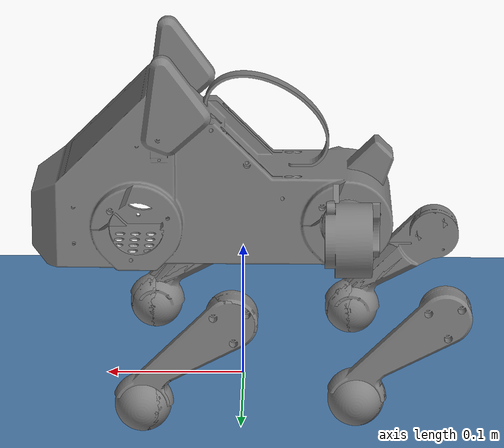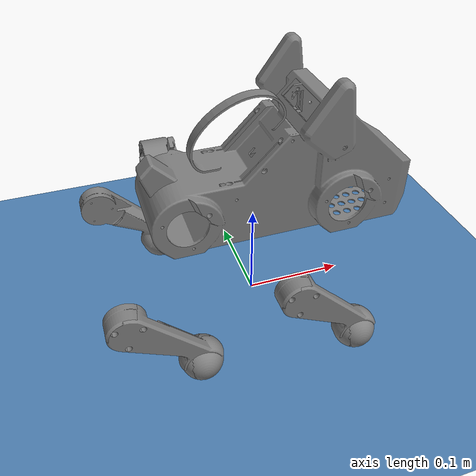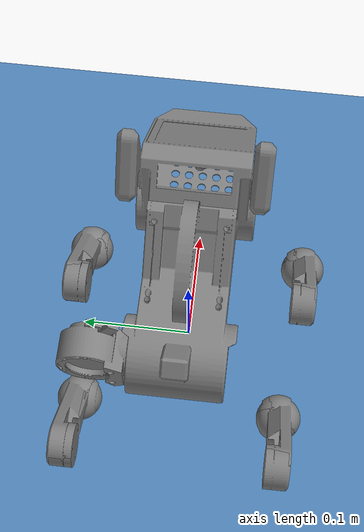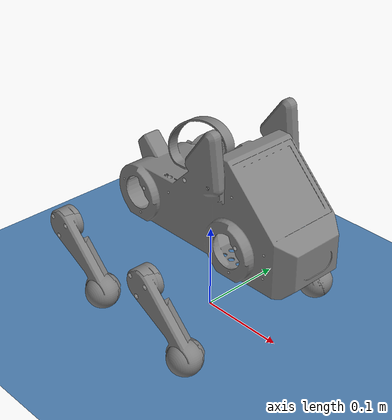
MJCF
<mujoco model="pupper_v3">
    <asset>
        <texture type="skybox" builtin="gradient" rgb1=".3 .5 .7" rgb2="0 0 0" width="512"
            height="512" />
        <texture name="grid" type="2d" builtin="checker" width="512" height="512" rgb1=".2 .4 .6"
            rgb2=".4 .6 .8" />
        <material name="grid" texture="grid" texrepeat="1 1" texuniform="true" reflectance="0" />
    </asset>

    <option iterations="1" ls_iterations="5" cone="elliptic" impratio="100" timestep="0.004">
        <flag eulerdamp="disable" />
    </option>

    <compiler angle="radian" meshdir="../meshes/stl/" autolimits="true" />

    <sensor>
        <gyro name="body_gyro" site="body_imu_site" />
        <accelerometer name="body_acc" site="body_imu_site" />
        <framequat name="body_quat" objtype="site" objname="body_imu_site" />
        <framequat objtype="site" objname="body_imu_site" name="orientation" />
        <framepos objtype="site" objname="body_imu_site" name="global_position" />
        <framelinvel objtype="site" objname="body_imu_site" name="global_linvel" />
        <frameangvel objtype="site" objname="body_imu_site" name="global_angvel" />
    </sensor>

    <custom>
        <numeric data="5" name="max_contact_points" />
        <numeric data="4" name="max_geom_pairs" />
    </custom>

    <default>
        <general forcerange="-3 3" forcelimited="true" biastype="affine" gainprm="5.0 0 0"
            biasprm="0 -5.0 -0.1" />
        <geom condim="3" contype="0" conaffinity="0" />
        <joint armature="0.0016" type="hinge" damping="0.01" limited="true" />
        <default class="collision">
            <geom group="3" contype="0" conaffinity="1" solimp="0.015 1 0.031"
                friction="0.8 0.02 0.01" />
        </default>
    </default>

    <asset>
        <mesh name="BodyV4v70_001" file="BodyV4v70_001.stl" />
        <mesh name="LegAssemblyForFlangedv26_001" file="LegAssemblyForFlangedv26_001.stl" />
        <mesh name="LegAssemblyForFlangedv26_002" file="LegAssemblyForFlangedv26_002.stl" />
        <mesh name="LegAssemblyForFlangedv26_003" file="LegAssemblyForFlangedv26_003.stl" />
        <mesh name="LegAssemblyForFlangedv26_010" file="LegAssemblyForFlangedv26_010.stl"
            scale="1 -1 1" />
        <mesh name="LegAssemblyForFlangedv26_011" file="LegAssemblyForFlangedv26_011.stl"
            scale="1 1 -1" />
        <mesh name="LegAssemblyForFlangedv26_012" file="LegAssemblyForFlangedv26_012.stl"
            scale="1 1 -1" />
        <mesh name="LegAssemblyForFlangedv26_005" file="LegAssemblyForFlangedv26_005.stl" />
        <mesh name="LegAssemblyForFlangedv26_006" file="LegAssemblyForFlangedv26_006.stl" />
        <mesh name="LegAssemblyForFlangedv26_007" file="LegAssemblyForFlangedv26_007.stl" />
        <mesh name="LegAssemblyForFlangedv26_013" file="LegAssemblyForFlangedv26_013.stl"
            scale="1 -1 1" />
        <mesh name="LegAssemblyForFlangedv26_014" file="LegAssemblyForFlangedv26_014.stl"
            scale="1 1 -1" />
        <mesh name="LegAssemblyForFlangedv26_015" file="LegAssemblyForFlangedv26_015.stl"
            scale="1 1 -1" />
    </asset>

    <worldbody>
        <geom name="floor" size="0 0 .05" type="plane" material="grid" condim="3" contype="1"
            conaffinity="1" />
        <geom name="floor_visual" size="0 0 .05" pos="0 0 -0.001" type="plane" material="grid"
            condim="3" contype="0" conaffinity="0" group="1" />
        <light name="spotlight" mode="targetbodycom" target="base_link" diffuse="0.9 0.9 0.9"
            specular="0.3 0.3 0.3" pos="0 -4 4" cutoff="100" />
        <camera name="tracking_cam" mode="targetbody" target="base_link" pos="0.5 -0.5 0.5" />

        <body name="base_link" pos="0 0 0.13" gravcomp="0">
            <site name="body_imu_site" pos="0.09 0 0.032" />
            <inertial pos="0.025 0 0.015" quat="0 0.677807 0 0.73524" mass="1.506"
                diaginertia="0.00854071 0.0085 0.00235929" />
            <joint name="world_to_body" type="free" />
            <geom class="collision" size="0.04507 0.06379 0.129715" pos="0.02146 0 0.03345"
                quat="0.499998 -0.5 -0.500002 0.5" type="box" />
            <geom quat="0.499998 -0.5 -0.500002 0.5" type="mesh" contype="0" conaffinity="0"
                group="1" density="0" mesh="BodyV4v70_001" />

            <body name="leg_front_r_1" pos="0.075 -0.0835 0" quat="0.707105 0.707108 0 0"
                gravcomp="0">
                <inertial pos="0 0 0" mass="0.18" diaginertia="7.4e-05 5.8e-05 4.8e-05" />
                <joint name="leg_front_r_1" pos="0 0 0" axis="0 0 1" range="-1.22 2.51" />
                <geom pos="0 0 -0.028" quat="1.32679e-06 0 0 1" type="mesh" contype="0"
                    conaffinity="0" group="1" density="0" mesh="LegAssemblyForFlangedv26_001" />
                <body name="leg_front_r_2" pos="0 0 0"
                    quat="0.707107 2.24089e-06 -0.707107 4.83018e-06" gravcomp="0">
                    <inertial pos="0 -0.0334 0.05419" quat="0.903877 0.427791 0 0" mass="0.186"
                        diaginertia="0.000113 9.74951e-05 4.65049e-05" />
                    <joint name="leg_front_r_2" pos="0 0 0" axis="0 0 1" range="-0.42 3.14" />
                    <geom class="collision" size="0.025" pos="0 -0.0494 0.0685"
                        quat="0.707105 0 0.707108 0" type="sphere" />
                    <geom pos="-0.028 0 0" quat="-2.93388e-06 0.707108 2.26082e-06 0.707106"
                        type="mesh" contype="0" conaffinity="0" group="1" density="0"
                        mesh="LegAssemblyForFlangedv26_002" />
                    <body name="leg_front_r_3" pos="0 -0.0494 0.0685" quat="0.707105 0 0.707108 0"
                        gravcomp="0">
                        <inertial pos="0.03866 -0.03585 0.01833"
                            quat="0.270598 0.653281 -0.270598 0.653281" mass="0.05"
                            diaginertia="7.7e-05 7.55e-05 5.5e-06" />
                        <joint name="leg_front_r_3" pos="0 0 0" axis="0 0 1" range="-2.79 0.71" />
                        <geom class="collision" size="0.01995" pos="0.06231 -0.06216 0.018"
                            quat="1.32679e-06 0 0 1" />
                        <geom pos="0.0685 0.0494 -0.028" quat="1.32679e-06 0 0 1" type="mesh"
                            contype="0" conaffinity="0" group="1" density="0"
                            mesh="LegAssemblyForFlangedv26_003" />
                        <site name="leg_front_r_3_foot_site" pos="0.06231 -0.06216 0.018" />
                    </body>
                </body>
            </body>

            <body name="leg_front_l_1" pos="0.075 0.0835 0" quat="0.707105 -0.707108 0 0"
                gravcomp="0">
                <inertial pos="0 0 0" mass="0.18" diaginertia="7.4e-05 5.8e-05 4.8e-05" />
                <joint name="leg_front_l_1" pos="0 0 0" axis="0 0 1" range="-2.51 1.22" />
                <geom pos="0 0 -0.028" quat="1.32679e-06 0 0 1" type="mesh" contype="0"
                    conaffinity="0" group="1" density="0" mesh="LegAssemblyForFlangedv26_010" />
                <body name="leg_front_l_2" pos="0 0 0"
                    quat="-3.89602e-06 0.707107 -1.29867e-06 -0.707107" gravcomp="0">
                    <inertial pos="0 -0.0334 0.05419" quat="0.903877 0.427791 0 0" mass="0.186"
                        diaginertia="0.000113 9.74951e-05 4.65049e-05" />
                    <joint name="leg_front_l_2" pos="0 0 0" axis="0 0 1" range="-3.14 0.42" />
                    <geom class="collision" size="0.025" pos="0 -0.0494 0.0685"
                        quat="0.707105 0 0.707108 0" type="sphere" />
                    <geom pos="0.028 0 0" quat="-2.93388e-06 0.707108 2.26082e-06 0.707106"
                        type="mesh" contype="0" conaffinity="0" group="1" density="0"
                        mesh="LegAssemblyForFlangedv26_011" />
                    <body name="leg_front_l_3" pos="0 -0.0494 0.0685"
                        quat="9.38184e-07 -0.707108 9.38187e-07 0.707105" gravcomp="0">
                        <inertial pos="0.03866 0.03585 0.01833"
                            quat="0.653281 0.270598 -0.653281 0.270598" mass="0.05"
                            diaginertia="7.7e-05 7.55e-05 5.5e-06" />
                        <joint name="leg_front_l_3" pos="0 0 0" axis="0 0 1" range="-0.71 2.79" />
                        <geom class="collision" size="0.01995" pos="0.06231 0.06216 0.018"
                            quat="1.32679e-06 0 0 1" />
                        <geom pos="0.0685 -0.0494 -0.028"
                            quat="1.76029e-12 1.32679e-06 1 1.32679e-06" type="mesh" contype="0"
                            conaffinity="0" group="1" density="0"
                            mesh="LegAssemblyForFlangedv26_012" />
                        <site name="leg_front_l_3_foot_site" pos="0.06231 0.06216 0.018" />
                    </body>
                </body>
            </body>

            <body name="leg_back_r_1" pos="-0.075 -0.0725 0" quat="0.707105 0.707108 0 0"
                gravcomp="0">
                <inertial pos="0 0 0" mass="0.18" diaginertia="7.4e-05 5.8e-05 4.8e-05" />
                <joint name="leg_back_r_1" pos="0 0 0" axis="0 0 1" range="-1.22 2.51" />
                <geom pos="0 0 -0.028" quat="1.32679e-06 0 0 1" type="mesh" contype="0"
                    conaffinity="0" group="1" density="0" mesh="LegAssemblyForFlangedv26_005" />
                <body name="leg_back_r_2" pos="0 0 0"
                    quat="0.707107 2.24089e-06 -0.707107 4.83018e-06" gravcomp="0">
                    <inertial pos="0 -0.0334 0.05419" quat="0.903877 0.427791 0 0" mass="0.186"
                        diaginertia="0.000113 9.74951e-05 4.65049e-05" />
                    <joint name="leg_back_r_2" pos="0 0 0" axis="0 0 1" range="-0.42 3.14" />
                    <geom class="collision" size="0.025" pos="0 -0.0494 0.0685"
                        quat="0.707105 0 0.707108 0" type="sphere" />
                    <geom pos="-0.028 0 0" quat="-2.93388e-06 0.707108 2.26082e-06 0.707106"
                        type="mesh" contype="0" conaffinity="0" group="1" density="0"
                        mesh="LegAssemblyForFlangedv26_006" />
                    <body name="leg_back_r_3" pos="0 -0.0494 0.0685" quat="0.707105 0 0.707108 0"
                        gravcomp="0">
                        <inertial pos="0.03866 -0.03585 0.01833"
                            quat="0.270598 0.653281 -0.270598 0.653281" mass="0.05"
                            diaginertia="7.7e-05 7.55e-05 5.5e-06" />
                        <joint name="leg_back_r_3" pos="0 0 0" axis="0 0 1" range="-2.79 0.71" />
                        <geom class="collision" size="0.01995" pos="0.06231 -0.06216 0.018"
                            quat="1.32679e-06 0 0 1" />
                        <geom pos="0.0685 0.0494 -0.028" quat="1.32679e-06 0 0 1" type="mesh"
                            contype="0" conaffinity="0" group="1" density="0"
                            mesh="LegAssemblyForFlangedv26_007" />
                        <site name="leg_back_r_3_foot_site" pos="0.06231 -0.06216 0.018" />
                    </body>
                </body>
            </body>

            <body name="leg_back_l_1" pos="-0.075 0.0725 0" quat="0.707105 -0.707108 0 0"
                gravcomp="0">
                <inertial pos="0 0 0" mass="0.18" diaginertia="7.4e-05 5.8e-05 4.8e-05" />
                <joint name="leg_back_l_1" pos="0 0 0" axis="0 0 1" range="-2.51 1.22" />
                <geom pos="0 0 -0.028" quat="1.32679e-06 0 0 1" type="mesh" contype="0"
                    conaffinity="0" group="1" density="0" mesh="LegAssemblyForFlangedv26_013" />
                <body name="leg_back_l_2" pos="0 0 0"
                    quat="-3.89602e-06 0.707107 -1.29867e-06 -0.707107" gravcomp="0">
                    <inertial pos="0 -0.0334 0.05419" quat="0.903877 0.427791 0 0" mass="0.186"
                        diaginertia="0.000113 9.74951e-05 4.65049e-05" />
                    <joint name="leg_back_l_2" pos="0 0 0" axis="0 0 1" range="-3.14 0.42" />
                    <geom class="collision" size="0.025" pos="0 -0.0494 0.0685"
                        quat="0.707105 0 0.707108 0" type="sphere" />
                    <geom pos="0.028 0 0" quat="-2.93388e-06 0.707108 2.26082e-06 0.707106"
                        type="mesh" contype="0" conaffinity="0" group="1" density="0"
                        mesh="LegAssemblyForFlangedv26_014" />
                    <body name="leg_back_l_3" pos="0 -0.0494 0.0685"
                        quat="9.38184e-07 -0.707108 9.38187e-07 0.707105" gravcomp="0">
                        <inertial pos="0.03866 0.03585 0.01833"
                            quat="0.653281 0.270598 -0.653281 0.270598" mass="0.05"
                            diaginertia="7.7e-05 7.55e-05 5.5e-06" />
                        <joint name="leg_back_l_3" pos="0 0 0" axis="0 0 1" range="-0.71 2.79" />
                        <geom class="collision" size="0.01995" pos="0.06231 0.06216 0.018"
                            quat="1.32679e-06 0 0 1" />
                        <geom pos="0.0685 -0.0494 -0.028"
                            quat="1.76029e-12 1.32679e-06 1 1.32679e-06" type="mesh" contype="0"
                            conaffinity="0" group="1" density="0"
                            mesh="LegAssemblyForFlangedv26_015" />
                        <site name="leg_back_l_3_foot_site" pos="0.06231 0.06216 0.018" />
                    </body>
                </body>
            </body>

        </body>
    </worldbody>

    <actuator>
        <general joint="leg_front_r_1" name="leg_front_r_1" />
        <general joint="leg_front_r_2" name="leg_front_r_2" />
        <general joint="leg_front_r_3" name="leg_front_r_3" />
        <general joint="leg_front_l_1" name="leg_front_l_1" />
        <general joint="leg_front_l_2" name="leg_front_l_2" />
        <general joint="leg_front_l_3" name="leg_front_l_3" />
        <general joint="leg_back_r_1" name="leg_back_r_1" />
        <general joint="leg_back_r_2" name="leg_back_r_2" />
        <general joint="leg_back_r_3" name="leg_back_r_3" />
        <general joint="leg_back_l_1" name="leg_back_l_1" />
        <general joint="leg_back_l_2" name="leg_back_l_2" />
        <general joint="leg_back_l_3" name="leg_back_l_3" />
    </actuator>

    <keyframe>
        <key name="home"
            qpos="0 0 0.13             1 0 0 0             0.0 0.0 0.0             0.0 0.0 0.0             0.0 0.0 0.0             0.0 0.0 0.0"
            ctrl="0.0 0.0 0.0             0.0 0.0 0.0             0.0 0.0 0.0             0.0 0.0 0.0" />
    </keyframe>

</mujoco>
